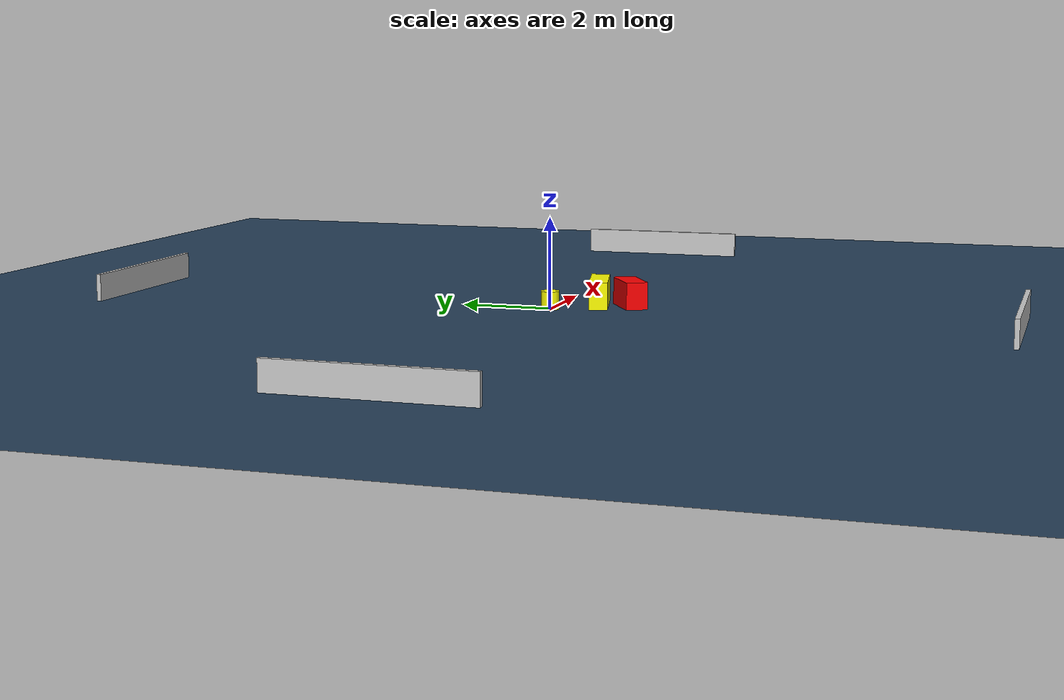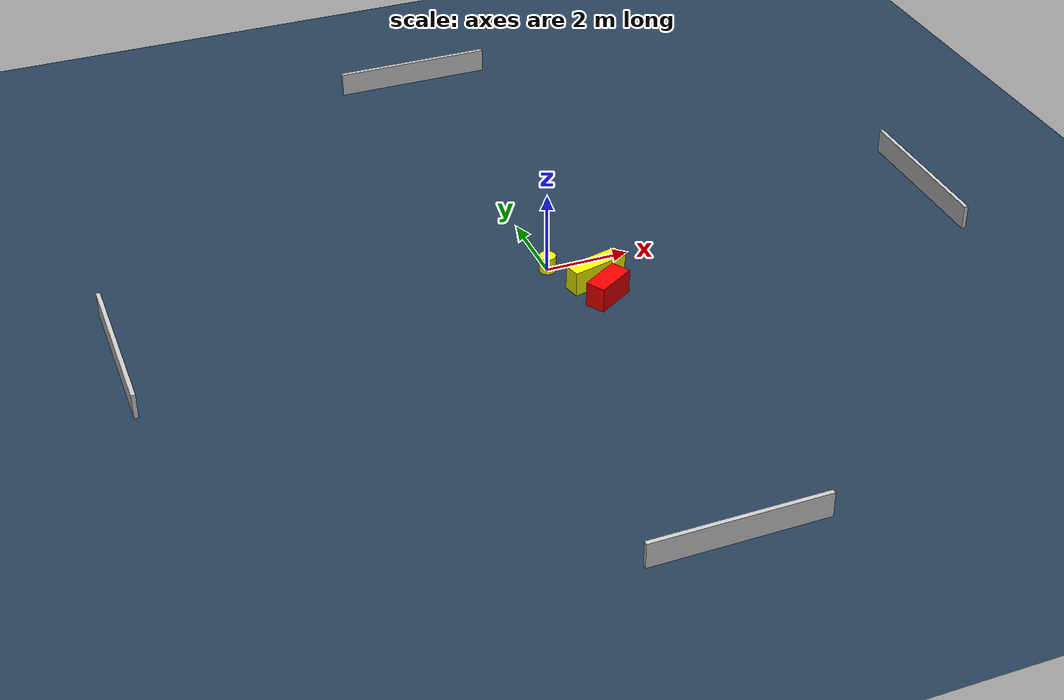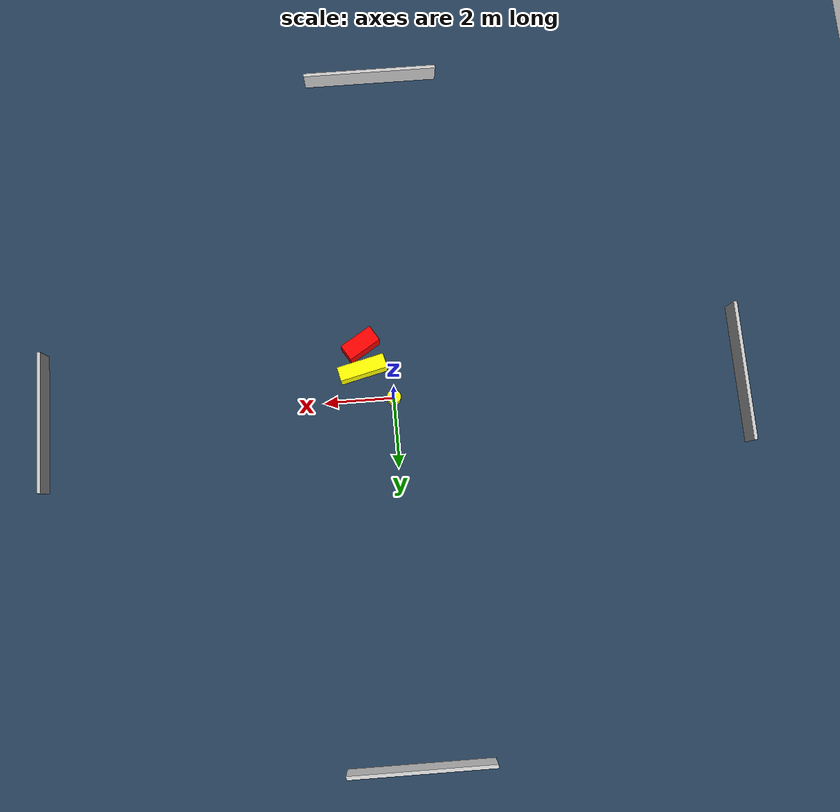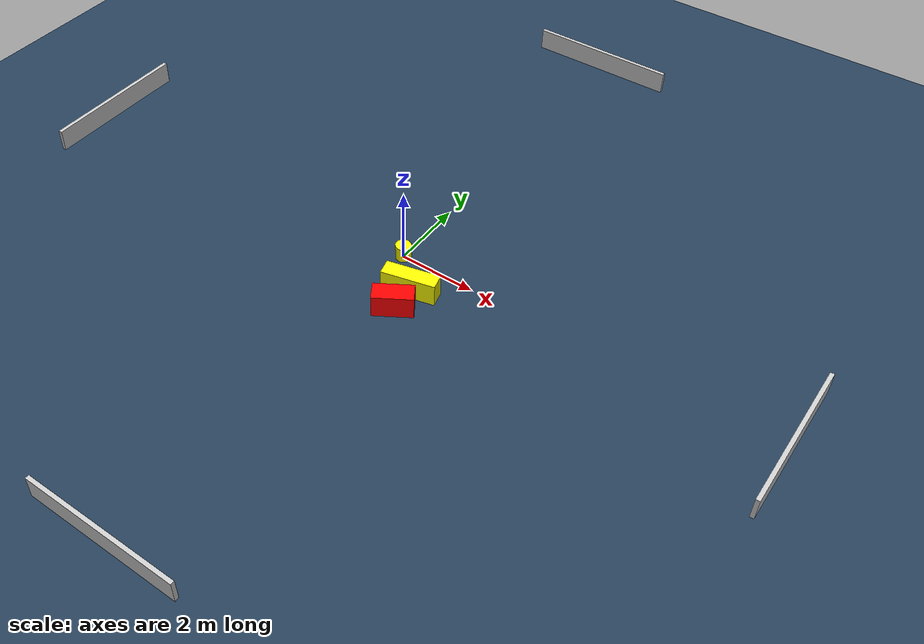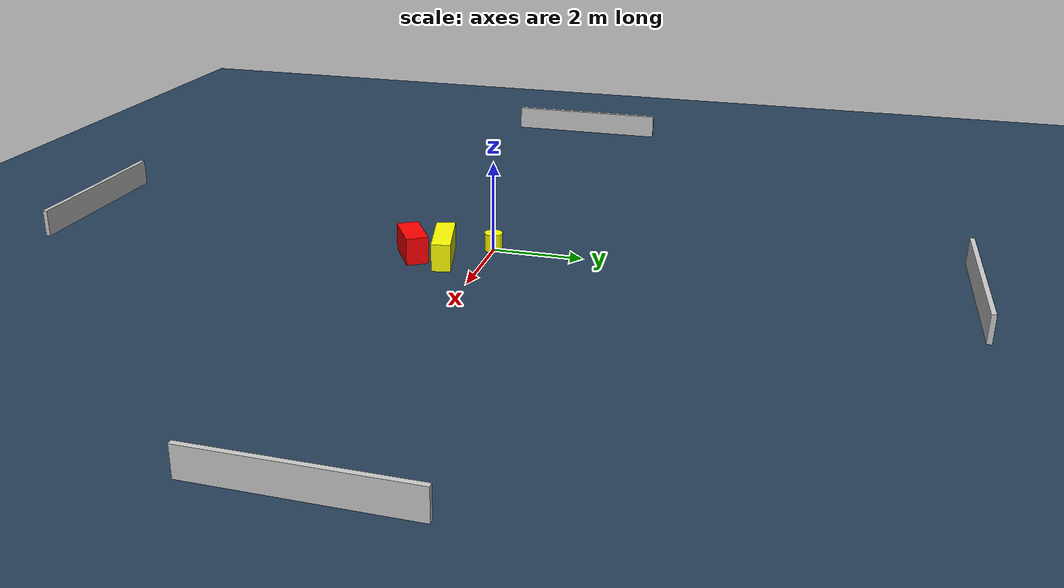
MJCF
<?xml version="1.0" ?>
<mujoco model="generated_environment">
  <option timestep="0.01" integrator="RK4" cone="elliptic"/>
  <default>
    <geom density="1"/>
  </default>
  <asset>
    <texture builtin="gradient" height="3072" name="skybox" rgb1="0.3 0.5 0.7" rgb2="0 0 0" type="skybox" width="512"/>
    <texture builtin="checker" height="300" name="groundplane" rgb1="0.2 0.3 0.4" rgb2="0.1 0.2 0.3" type="2d" width="300"/>
    <material name="groundplane" reflectance="0.2" texrepeat="5 5" texture="groundplane"/>
  </asset>
  <worldbody>
    <light dir="0 0 -1" directional="true" pos="0 0 1.5"/>
    <geom condim="3" friction="0.5 0.005 0.001" material="groundplane" name="floor" pos="0 0 0" size="0 0 0.05" type="plane"/>
    <body name="walls">
      <geom name="wall_1" condim="4" pos="-10.0 0.0 0.3" rgba="0.800000011920929 0.800000011920929 0.800000011920929 1.0" size="0.05 2.0 0.3" type="box"/>
      <geom name="wall_2" condim="4" pos="10.0 0.0 0.3" rgba="0.800000011920929 0.800000011920929 0.800000011920929 1.0" size="0.05 2.0 0.3" type="box"/>
      <geom name="wall_3" condim="4" pos="0.0 -10.0 0.3" rgba="0.800000011920929 0.800000011920929 0.800000011920929 1.0" size="2.0 0.05 0.3" type="box"/>
      <geom name="wall_4" condim="4" pos="0.0 10.0 0.3" rgba="0.800000011920929 0.800000011920929 0.800000011920929 1.0" size="2.0 0.05 0.3" type="box"/>
    </body>
    <body name="robot">
      <joint name="joint_x" type="slide" pos="0 0 0" axis="1 0 0"/>
      <joint name="joint_y" type="slide" pos="0 0 0" axis="0 1 0"/>
      <geom name="robot" type="cylinder" pos="0.0 0.0 0.2" size="0.2 0.2 0.0" mass="5.0" friction="1.0 0.005 0.0001" condim="4" rgba="1.0 1.0 0.0 1.0"/>
    </body>
    <body name="obstacle_1_movable">
      <geom name="obstacle_1_movable" condim="4" pos="0.8438483276505535 -0.877602226949473 0.3" euler="0 0 193.41188156897067" friction="0.0 0.005 0.001" rgba="1.0 1.0 0.0 1.0" size="0.6877203969069209 0.20602412473768383 0.3" type="box" mass="0.1"/>
      <joint type="free"/>
    </body>
    <body name="obstacle_2_static">
      <geom name="obstacle_2_static" condim="4" pos="0.8486477587625042 -1.5845201974205674 0.3" euler="0 0 211.771222751839" friction="0.0 0.005 0.001" rgba="1.0 0.0 0.0 1.0" size="0.5054018314651643 0.2426496090079449 0.3" type="box"/>
    </body>
  </worldbody>
  <actuator>
    <motor name="actuator_x" joint="joint_x" gear="1" ctrlrange="-1 1"/>
    <motor name="actuator_y" joint="joint_y" gear="1" ctrlrange="-1 1"/>
  </actuator>
</mujoco>
